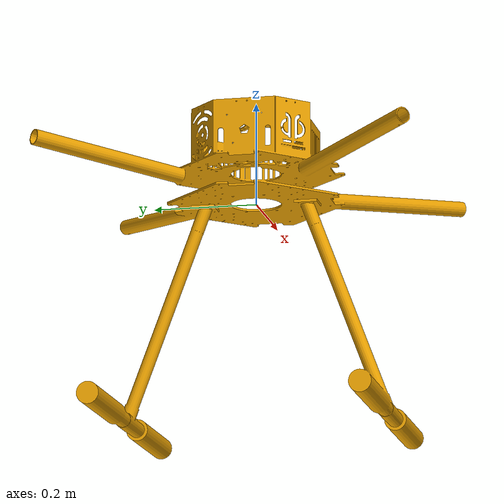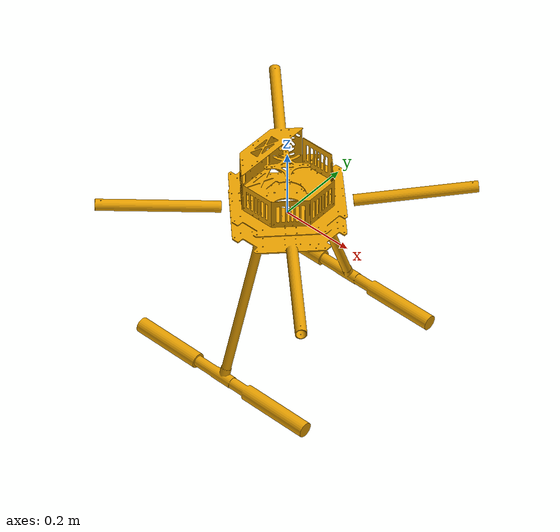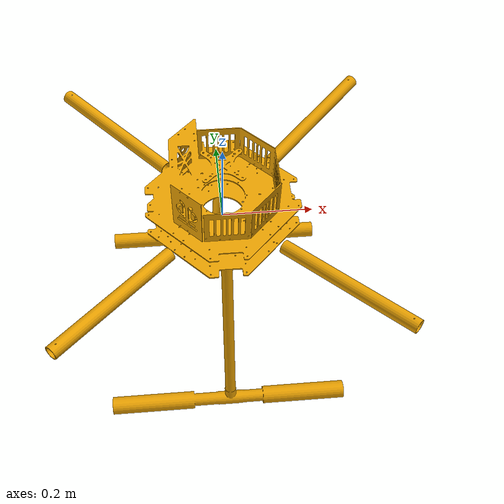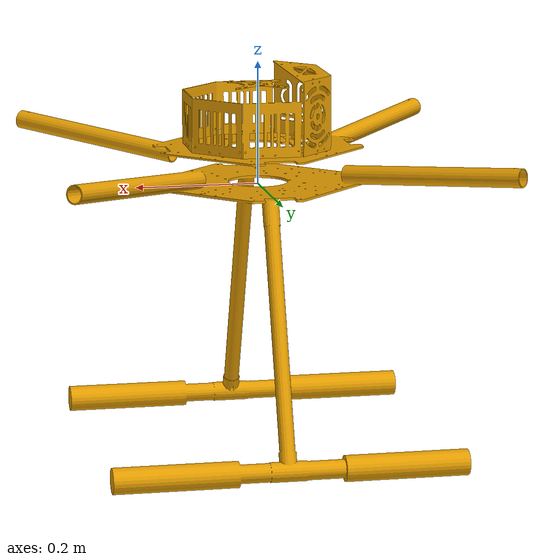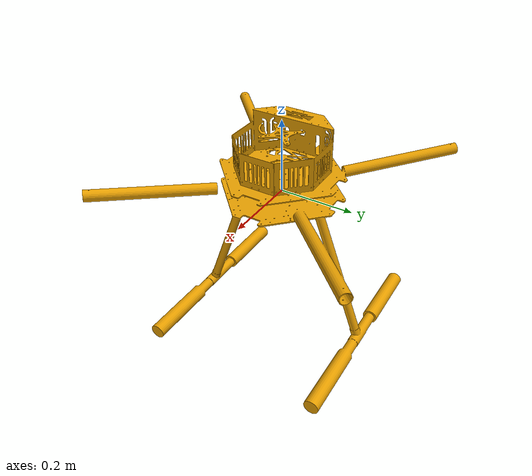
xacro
<?xml version="1.0" encoding="utf-8"?>

<robot>

    <!-- https://upload.wikimedia.org/wikipedia/commons/5/52/Wheelbase_and_Track.png -->

    <link name="base_link">
        <inertial>
            <mass value="11.933977"/>
            <origin xyz="-0.003402 0.001019 0.029486"/>
            <inertia ixx="8.299e-1" ixy="2.604e-4" ixz="1.088e-3" iyy="0.8643"
                     iyz="2.435e-4" izz="1.453"/>
        </inertial>
        <visual>
            <origin xyz="0 0 0" rpy="0 0 0"/>
            <geometry>
                <mesh filename="package://robot_description/meshes/drone/base_link.stl" scale="0.001 0.001 0.001"/>
            </geometry>
        </visual>
        <collision>
            <origin xyz="0 0 0" rpy="0 0 0"/>
            <geometry>
                <mesh filename="package://robot_description/meshes/drone/base_link.stl" scale="0.001 0.001 0.001"/>
            </geometry>
        </collision>
    </link>

</robot>
